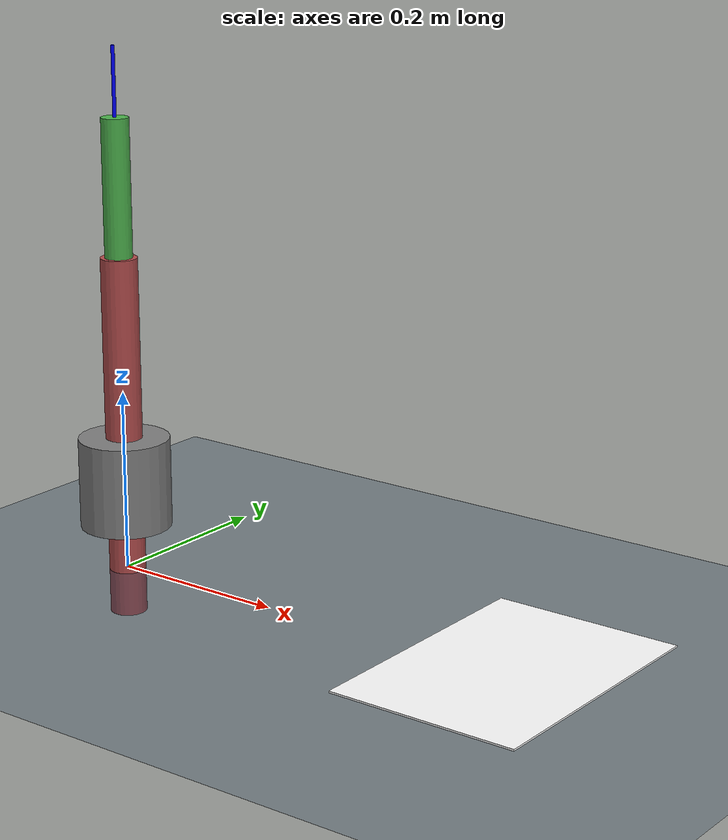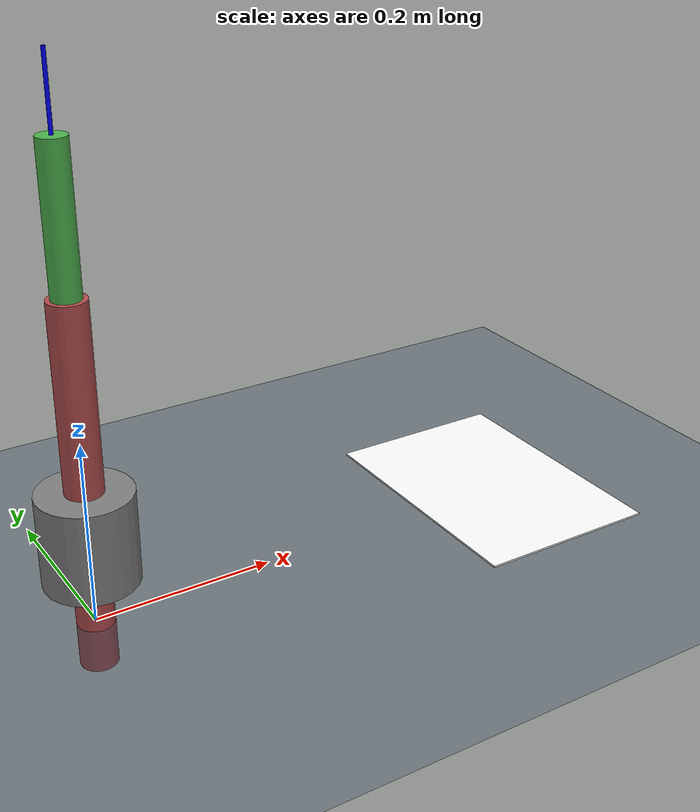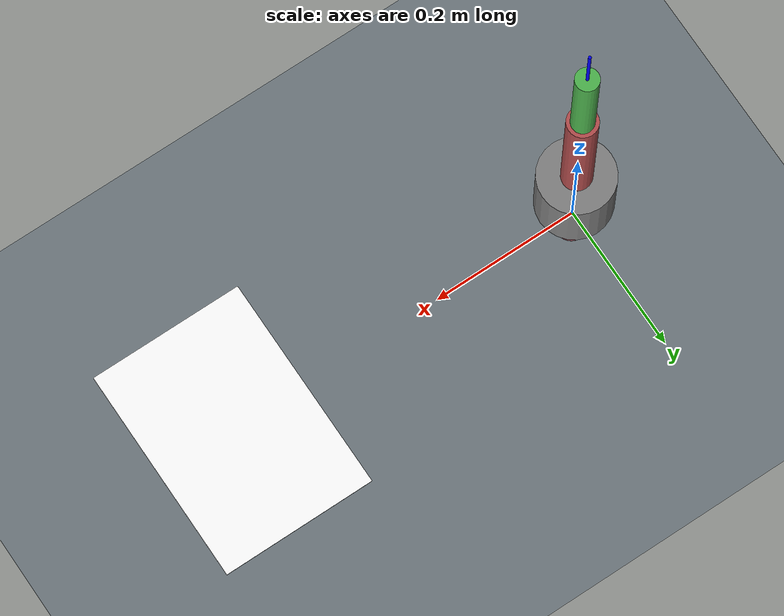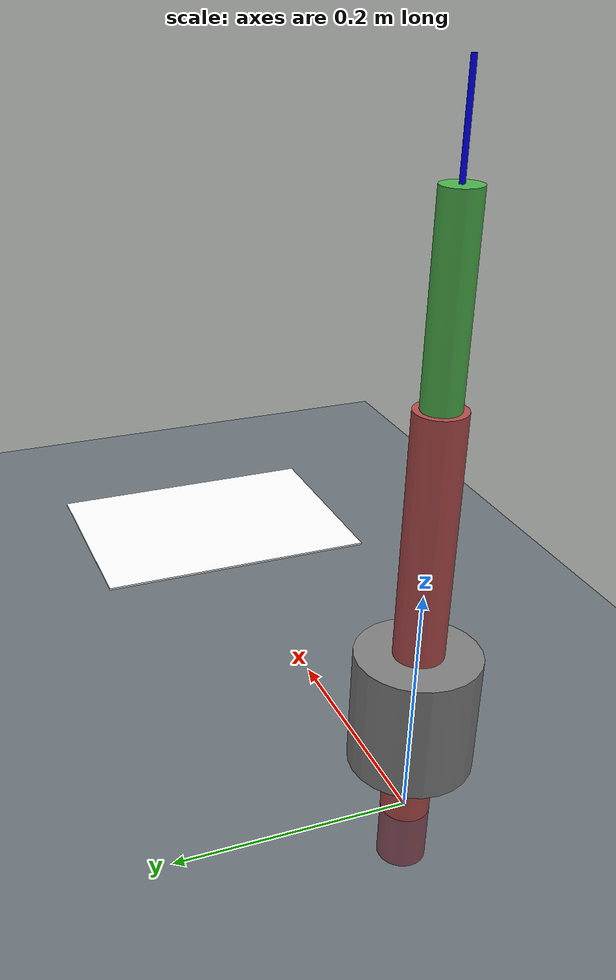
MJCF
<mujoco model="handwriting_robot">
          <option timestep="0.001" gravity="0 0 -9.81"/>

          <asset>
            <texture name="grid" type="2d" builtin="checker" rgb1=".1 .2 .3" rgb2=".2 .3 .4" width="300" height="300"/>
            <material name="grid" texture="grid" texrepeat="1 1" reflectance=".2"/>
          </asset>

          <worldbody>
            <!-- Ground plane -->
            <geom name="ground" type="plane" size="2 2 .1" material="grid"/>

            <!-- Paper surface -->
            <body name="paper" pos="0.5 0 0.01">
              <geom name="paper_geom" type="box" size="0.105 0.148 0.001" rgba="1 1 1 1"/>
            </body>

            <!-- Robot base -->
            <body name="robot_base" pos="0 0 0.1">
              <geom name="base_geom" type="cylinder" size="0.05 0.05" rgba="0.5 0.5 0.5 1"/>

              <!-- Robot arm link 1 -->
              <body name="link1" pos="0 0 0.05">
                <joint name="joint1" type="hinge" axis="0 0 1" range="-180 180"/>
                <geom name="link1_geom" type="cylinder" size="0.02 0.2" rgba="0.7 0.3 0.3 1"/>

                <!-- Robot arm link 2 -->
                <body name="link2" pos="0 0 0.2">
                  <joint name="joint2" type="hinge" axis="1 0 0" range="-90 90"/>
                  <geom name="link2_geom" type="cylinder" size="0.015 0.15" rgba="0.3 0.7 0.3 1"/>

                  <!-- Pen end-effector -->
                  <body name="pen" pos="0 0 0.15">
                    <joint name="pen_joint" type="free"/>
                    <geom name="pen_geom" type="cylinder" size="0.002 0.075" rgba="0 0 1 1"/>
                  </body>
                </body>
              </body>
            </body>
          </worldbody>

          <actuator>
            <motor name="motor1" joint="joint1" gear="1"/>
            <motor name="motor2" joint="joint2" gear="1"/>
          </actuator>
        </mujoco>
